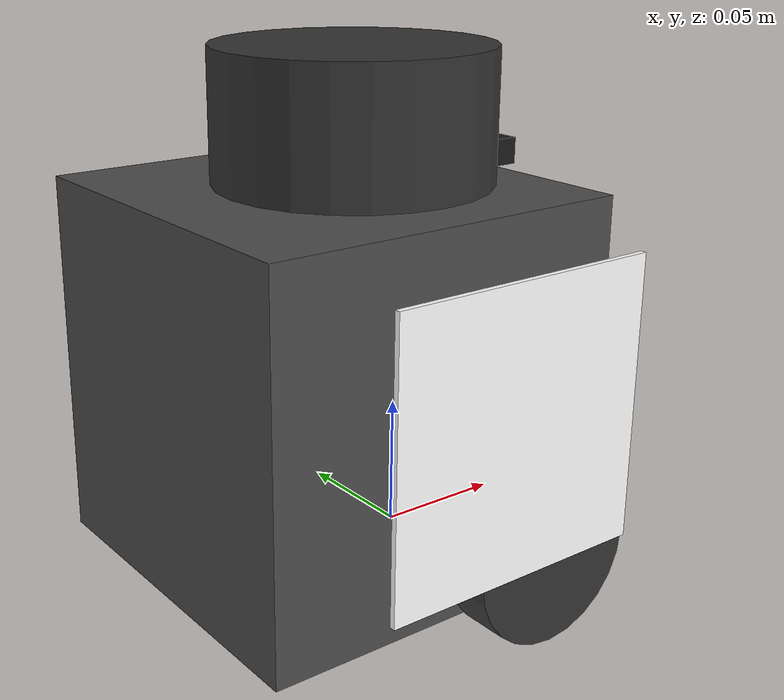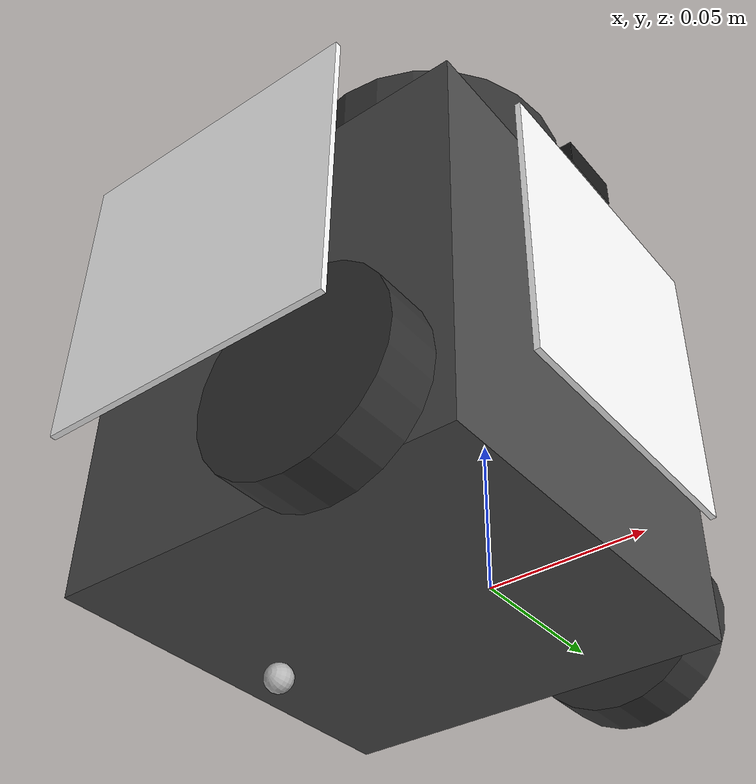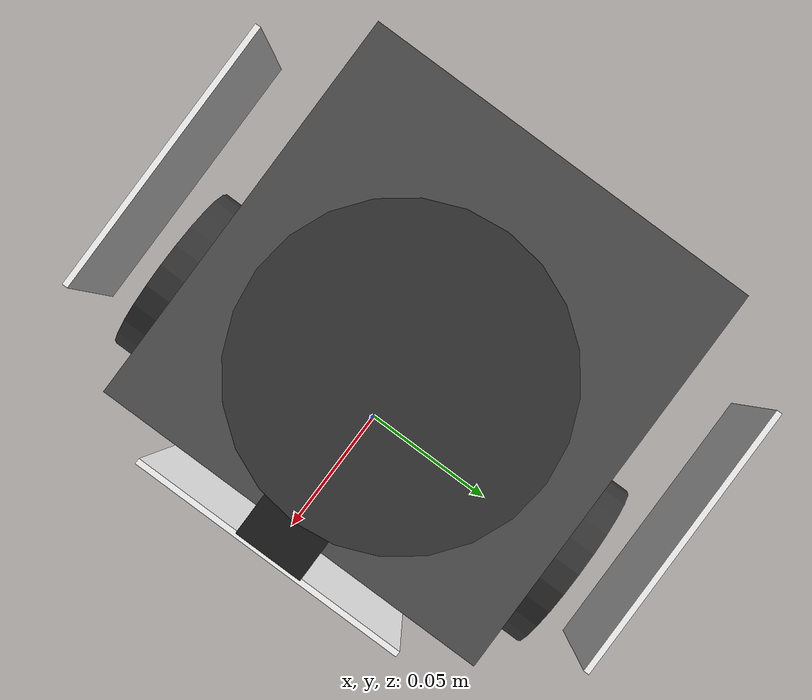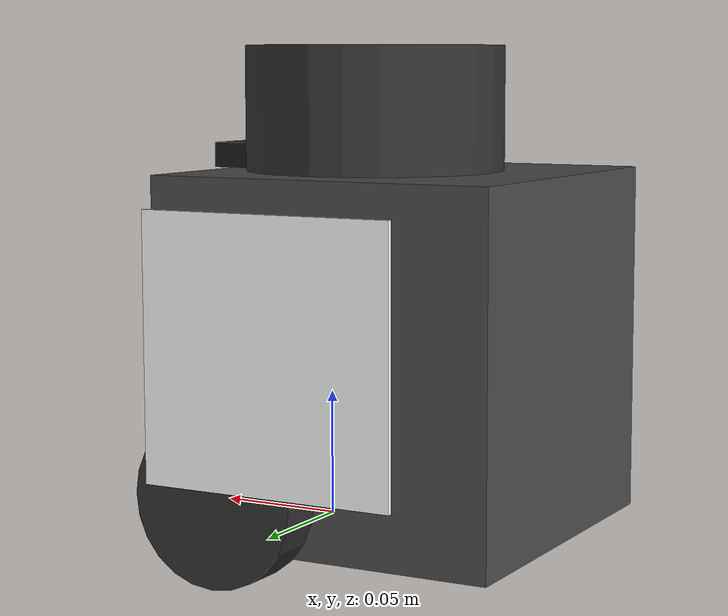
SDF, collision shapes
<?xml version="1.0" ?>
<sdf version="1.8">
  <model name="turtlebot3_burger">
    <pose>0.0 0.0 0.0 0.0 0.0 0.0</pose>

    <link name="base_footprint"/>

    <link name="base_link">

      <inertial>
        <pose>-0.064 0 0.070 0 0 0</pose>
        <inertia>
          <ixx>1.9527e-02</ixx>
          <ixy>0</ixy>
          <ixz>0</ixz>
          <iyy>1.9527e-02</iyy>
          <iyz>0</iyz>
          <izz>1.9527e-02</izz>
        </inertia>
        <mass>8.2573504e-01</mass>
      </inertial>

      <collision name="base_collision">
        <pose>-0.032 0 0.070 0 0 0</pose>
        <geometry>
          <box>
            <size>0.14 0.14 0.14</size>
          </box>
        </geometry>
      </collision>

      <visual name="base_visual">
        <pose>-0.032 0 0 0 0 0</pose>
        <geometry>
          <mesh>
            <uri>model://turtlebot3_common/meshes/bases/burger_base.stl</uri>
            <scale>0.001 0.001 0.001</scale>
          </mesh>
        </geometry>
        <material>
          <ambient>0.3 0.3 0.3 1.0</ambient>
          <diffuse>0.3 0.3 0.3 1.0</diffuse>
        </material>
      </visual>
    </link>

    <link name="imu_link">
      <sensor name="tb3_imu" type="imu">
        <always_on>true</always_on>
        <update_rate>200</update_rate>
        <topic>/tb3_1/imu</topic>
        <imu>
          <angular_velocity>
            <x>
              <noise type="gaussian">
                <mean>0.0</mean>
                <stddev>2e-4</stddev>
              </noise>
            </x>
            <y>
              <noise type="gaussian">
                <mean>0.0</mean>
                <stddev>2e-4</stddev>
              </noise>
            </y>
            <z>
              <noise type="gaussian">
                <mean>0.0</mean>
                <stddev>2e-4</stddev>
              </noise>
            </z>
          </angular_velocity>
          <linear_acceleration>
            <x>
              <noise type="gaussian">
                <mean>0.0</mean>
                <stddev>1.7e-2</stddev>
              </noise>
            </x>
            <y>
              <noise type="gaussian">
                <mean>0.0</mean>
                <stddev>1.7e-2</stddev>
              </noise>
            </y>
            <z>
              <noise type="gaussian">
                <mean>0.0</mean>
                <stddev>1.7e-2</stddev>
              </noise>
            </z>
          </linear_acceleration>
        </imu>
      </sensor>
    </link>

    <link name="base_scan">
      <inertial>
        <pose>-0.020 0 0.161 0 0 0</pose>
        <inertia>
          <ixx>0.0001</ixx>
          <ixy>0.000</ixy>
          <ixz>0.000</ixz>
          <iyy>0.0001</iyy>
          <iyz>0.000</iyz>
          <izz>0.0001</izz>
        </inertia>
        <mass>0.114</mass>
      </inertial>

      <collision name="lidar_sensor_collision">
        <pose>-0.020 0 0.161 0 0 0</pose>
        <geometry>
          <cylinder>
            <radius>0.0508</radius>
            <length>0.055</length>
          </cylinder>
        </geometry>
      </collision>

      <visual name="lidar_sensor_visual">
        <pose>-0.032 0 0.171 0 0 0</pose>
        <geometry>
          <mesh>
            <uri>model://turtlebot3_common/meshes/sensors/lds.stl</uri>
            <scale>0.001 0.001 0.001</scale>
          </mesh>
        </geometry>
        <material>
          <ambient>0.2 0.2 0.2 1.0</ambient>
          <diffuse>0.2 0.2 0.2 1.0</diffuse>
        </material>
      </visual>

      <sensor name="hls_lfcd_lds" type="gpu_lidar">
        <always_on>true</always_on>
        <visualize>true</visualize>
        <pose>-0.032 0 0.171 0 0 0</pose>
        <update_rate>5</update_rate>
        <topic>/tb3_1/scan</topic>
        <gz_frame_id>base_scan</gz_frame_id>
        <lidar>
          <scan>
            <horizontal>
              <samples>360</samples>
              <resolution>1.000000</resolution>
              <min_angle>0.000000</min_angle>
              <max_angle>6.280000</max_angle>
            </horizontal>
          </scan>
          <range>
            <min>0.120000</min>
            <max>3.5</max>
            <resolution>0.015000</resolution>
          </range>
          <noise>
            <type>gaussian</type>
            <mean>0.0</mean>
            <stddev>0.01</stddev>
          </noise>
        </lidar>
      </sensor>
    </link>

    <link name="wheel_left_link">

      <inertial>
        <pose>0 0.08 0.023 -1.57 0 0</pose>
        <inertia>
          <ixx>5.445e-05</ixx>
          <ixy>0</ixy>
          <ixz>0</ixz>
          <iyy>5.445e-05</iyy>
          <iyz>0</iyz>
          <izz>1.089e-04</izz>
        </inertia>
        <mass>0.1</mass>
      </inertial>

      <collision name="wheel_left_collision">
        <pose>0 0.08 0.023 -1.57 0 0</pose>
        <geometry>
          <cylinder>
            <radius>0.033</radius>
            <length>0.018</length>
          </cylinder>
        </geometry>
        <surface>
          <!-- This friction pamareter don't contain reliable data!! -->
          <friction>
            <ode>
              <mu>100000.0</mu>
              <mu2>100000.0</mu2>
              <fdir1>0 0 0</fdir1>
              <slip1>0.0</slip1>
              <slip2>0.0</slip2>
            </ode>
          </friction>
          <contact>
            <ode>
              <soft_cfm>0</soft_cfm>
              <soft_erp>0.2</soft_erp>
              <kp>1e+5</kp>
              <kd>1</kd>
              <max_vel>0.01</max_vel>
              <min_depth>0.001</min_depth>
            </ode>
          </contact>
        </surface>
      </collision>

      <visual name="wheel_left_visual">
        <pose>0 0.08 0.023 0 0 0</pose>
        <geometry>
          <mesh>
            <uri>model://turtlebot3_common/meshes/wheels/left_tire.stl</uri>
            <scale>0.001 0.001 0.001</scale>
          </mesh>
        </geometry>
        <material>
          <ambient>0.2 0.2 0.2 1.0</ambient>
          <diffuse>0.2 0.2 0.2 1.0</diffuse>
        </material>
      </visual>
    </link>

    <link name="wheel_right_link">

      <inertial>
        <pose>0.0 -0.08 0.023 -1.57 0 0</pose>
        <inertia>
          <ixx>5.445e-05</ixx>
          <ixy>0</ixy>
          <ixz>0</ixz>
          <iyy>5.445e-05</iyy>
          <iyz>0</iyz>
          <izz>1.089e-04</izz>
        </inertia>
        <mass>0.1</mass>
      </inertial>

      <collision name="wheel_right_collision">
        <pose>0.0 -0.08 0.023 -1.57 0 0</pose>
        <geometry>
          <cylinder>
            <radius>0.033</radius>
            <length>0.018</length>
          </cylinder>
        </geometry>
        <surface>
          <!-- This friction pamareter don't contain reliable data!! -->
          <friction>
            <ode>
              <mu>100000.0</mu>
              <mu2>100000.0</mu2>
              <fdir1>0 0 0</fdir1>
              <slip1>0.0</slip1>
              <slip2>0.0</slip2>
            </ode>
          </friction>
          <contact>
            <ode>
              <soft_cfm>0</soft_cfm>
              <soft_erp>0.2</soft_erp>
              <kp>1e+5</kp>
              <kd>1</kd>
              <max_vel>0.01</max_vel>
              <min_depth>0.001</min_depth>
            </ode>
          </contact>
        </surface>
      </collision>

      <visual name="wheel_right_visual">
        <pose>0.0 -0.08 0.023 0 0 0</pose>
        <geometry>
          <mesh>
            <uri>model://turtlebot3_common/meshes/wheels/right_tire.stl</uri>
            <scale>0.001 0.001 0.001</scale>
          </mesh>
        </geometry>
        <material>
          <ambient>0.2 0.2 0.2 1.0</ambient>
          <diffuse>0.2 0.2 0.2 1.0</diffuse>
        </material>
      </visual>
    </link>

    <link name='caster_back_link'>
      <pose>-0.081 0 -0.004 -1.57 0 0</pose>
      <inertial>
        <mass>0.005</mass>
        <inertia>
          <ixx>0.00001</ixx>
          <ixy>0.000</ixy>
          <ixz>0.000</ixz>
          <iyy>0.00001</iyy>
          <iyz>0.000</iyz>
          <izz>0.00001</izz>
        </inertia>
      </inertial>
      <collision name='collision'>
        <geometry>
          <sphere>
            <radius>0.005000</radius>
          </sphere>
        </geometry>
        <surface>
          <contact>
            <ode>
              <soft_cfm>0</soft_cfm>
              <soft_erp>0.2</soft_erp>
              <kp>1e+5</kp>
              <kd>1</kd>
              <max_vel>0.01</max_vel>
              <min_depth>0.001</min_depth>
            </ode>
          </contact>
        </surface>
      </collision>
    </link>

    <joint name="base_joint" type="fixed">
      <parent>base_footprint</parent>
      <child>base_link</child>
      <pose>0.0 0.0 0.010 0 0 0</pose>
    </joint>

    <joint name="wheel_left_joint" type="revolute">
      <parent>base_link</parent>
      <child>wheel_left_link</child>
      <pose>0.0 0.08 0.023 -1.57 0 0</pose>
      <axis>
        <xyz>0 0 1</xyz>
        <limit>
          <effort>20</effort>
        </limit>
      </axis>
    </joint>

    <joint name="wheel_right_joint" type="revolute">
      <parent>base_link</parent>
      <child>wheel_right_link</child>
      <pose>0.0 -0.08 0.023 -1.57 0 0</pose>
      <axis>
        <xyz>0 0 1</xyz>
        <limit>
          <effort>20</effort>
        </limit>
      </axis>
    </joint>

    <joint name='caster_back_joint' type='ball'>
      <parent>base_link</parent>
      <child>caster_back_link</child>
    </joint>

    <joint name="imu_joint" type="fixed">
      <parent>base_link</parent>
      <child>imu_link</child>
      <pose>-0.032 0 0.068 0 0 0</pose>
      <axis>
        <xyz>0 0 1</xyz>
      </axis>
    </joint>

    <joint name="lidar_joint" type="fixed">
      <parent>base_link</parent>
      <child>base_scan</child>
      <pose>-0.032 0 0.171 0 0 0</pose>
      <axis>
        <xyz>0 0 1</xyz>
      </axis>
    </joint>

    <plugin filename="gz-sim-diff-drive-system" name="gz::sim::systems::DiffDrive">

      <!-- wheels -->
      <left_joint>wheel_left_joint</left_joint>
      <right_joint>wheel_right_joint</right_joint>

      <!-- kinematics -->
      <wheel_separation>0.160</wheel_separation>
      <wheel_radius>0.033</wheel_radius>

      <!-- limits -->
      <max_linear_acceleration>1.0</max_linear_acceleration>

      <topic>/tb3_1/cmd_vel</topic>

      <odom_topic>/tb3_1/odom</odom_topic>
      <frame_id>odom</frame_id>
      <child_frame_id>base_footprint</child_frame_id>
      <odom_publisher_frequency>30</odom_publisher_frequency>

      <tf_topic>/tf</tf_topic>

    </plugin>

    <plugin filename="gz-sim-joint-state-publisher-system" name="gz::sim::systems::JointStatePublisher">
      <topic>/tb3_1/joint_states</topic>
      <joint_name>wheel_left_joint</joint_name>
      <joint_name>wheel_right_joint</joint_name>
    </plugin>

    <!-- Added Camera link -->
    <link name="camera_link">
      <!-- x = 0.075 m   slightly forward/front-mounted -->
      <!-- y = 0.000 m   centered -->
      <!-- z = 0.145 m   below the LiDAR, above the base -->
      <pose>00.035 0 0.145 0 0 0</pose>

      <visual name="camera_visual">
        <geometry>
          <box>
            <size>0.025 0.024 0.010</size>
          </box>
        </geometry>
          <material>
            <ambient>0.1 0.1 0.1 1</ambient>
            <diffuse>0.1 0.1 0.1 1</diffuse>
          </material>
      </visual>

      <collision name="camera_collision">
        <geometry>
          <box>
            <size>0.025 0.024 0.010</size>
          </box>
        </geometry>
      </collision>

      <sensor name="front_camera" type="camera">
        <always_on>1</always_on>
        <update_rate>15</update_rate>
        <topic>/tb3_1/camera/image</topic>

        <camera>
          <horizontal_fov>1.047</horizontal_fov>
          <image>
            <width>640</width>
            <height>480</height>
            <format>R8G8B8</format>
          </image>
          <clip>
            <near>0.05</near>
            <far>10.0</far>
          </clip>
        </camera>
      </sensor>
    </link>

    <joint name="camera_joint" type="fixed">
      <parent>base_link</parent>
      <child>camera_link</child>
    </joint>

    <!-- ArUco Tags: back, front, left, right -->
    <!-- ID Mapping:
         aruco_0 = back
         aruco_1 = front
         aruco_2 = left
         aruco_3 = right
    -->

    <!-- BACK TAG: ID 0 -->
    <link name="aruco_back_link">
      <pose>-0.10 0 0.080 0 0 3.14159</pose>

      <visual name="aruco_back_visual">
        <geometry>
          <box>
            <size>0.002 0.10 0.10</size>
          </box>
        </geometry>

        <material>
          <diffuse>1 1 1 1</diffuse>
          <pbr>
            <metal>
              <albedo_map>
                file:///home/jvang/turtlebot3_ws/src/tb3_nav2_slam/models/tb3_1_burger/materials/textures/aruco_0.png
              </albedo_map>
            </metal>
          </pbr>
        </material>
      </visual>

      <collision name="aruco_back_collision">
        <geometry>
          <box>
            <size>0.002 0.10 0.10</size>
          </box>
        </geometry>
      </collision>
    </link>

    <joint name="aruco_back_joint" type="fixed">
      <parent>base_link</parent>
      <child>aruco_back_link</child>
    </joint>

    <!-- FRONT TAG: ID 1 -->
    <link name="aruco_front_link">
      <pose>0.05 0 0.080 0 0 0</pose>

      <visual name="aruco_front_visual">
        <geometry>
          <box>
            <size>0.002 0.10 0.10</size>
          </box>
        </geometry>

        <material>
          <diffuse>1 1 1 1</diffuse>
          <pbr>
            <metal>
              <albedo_map>
                file:///home/jvang/turtlebot3_ws/src/tb3_nav2_slam/models/tb3_1_burger/materials/textures/aruco_1.png
              </albedo_map>
            </metal>
          </pbr>
        </material>
      </visual>

      <collision name="aruco_front_collision">
        <geometry>
          <box>
            <size>0.002 0.10 0.10</size>
          </box>
        </geometry>
      </collision>
    </link>

    <joint name="aruco_front_joint" type="fixed">
      <parent>base_link</parent>
      <child>aruco_front_link</child>
    </joint>

    <!-- LEFT TAG: ID 2 -->
    <link name="aruco_left_link">
      <pose>-0.03 0.1 0.080 0 0 1.5708</pose>

      <visual name="aruco_left_visual">
        <geometry>
          <box>
            <size>0.002 0.10 0.10</size>
          </box>
        </geometry>

        <material>
          <diffuse>1 1 1 1</diffuse>
          <pbr>
            <metal>
              <albedo_map>
                file:///home/jvang/turtlebot3_ws/src/tb3_nav2_slam/models/tb3_1_burger/materials/textures/aruco_2.png
              </albedo_map>
            </metal>
          </pbr>
        </material>
      </visual>

      <collision name="aruco_left_collision">
        <geometry>
          <box>
            <size>0.002 0.10 0.10</size>
          </box>
        </geometry>
      </collision>
    </link>

    <joint name="aruco_left_joint" type="fixed">
      <parent>base_link</parent>
      <child>aruco_left_link</child>
    </joint>

    <!-- RIGHT TAG: ID 3 -->
    <link name="aruco_right_link">
      <pose>-0.03 -0.1 0.080 0 0 -1.5708</pose>

      <visual name="aruco_right_visual">
        <geometry>
          <box>
            <size>0.002 0.10 0.10</size>
          </box>
        </geometry>

        <material>
          <diffuse>1 1 1 1</diffuse>
          <pbr>
            <metal>
              <albedo_map>
                file:///home/jvang/turtlebot3_ws/src/tb3_nav2_slam/models/tb3_1_burger/materials/textures/aruco_3.png
              </albedo_map>
            </metal>
          </pbr>
        </material>
      </visual>

      <collision name="aruco_right_collision">
        <geometry>
          <box>
            <size>0.002 0.10 0.10</size>
          </box>
        </geometry>
      </collision>
    </link>

    <joint name="aruco_right_joint" type="fixed">
      <parent>base_link</parent>
      <child>aruco_right_link</child>
    </joint>

  </model>
</sdf>
